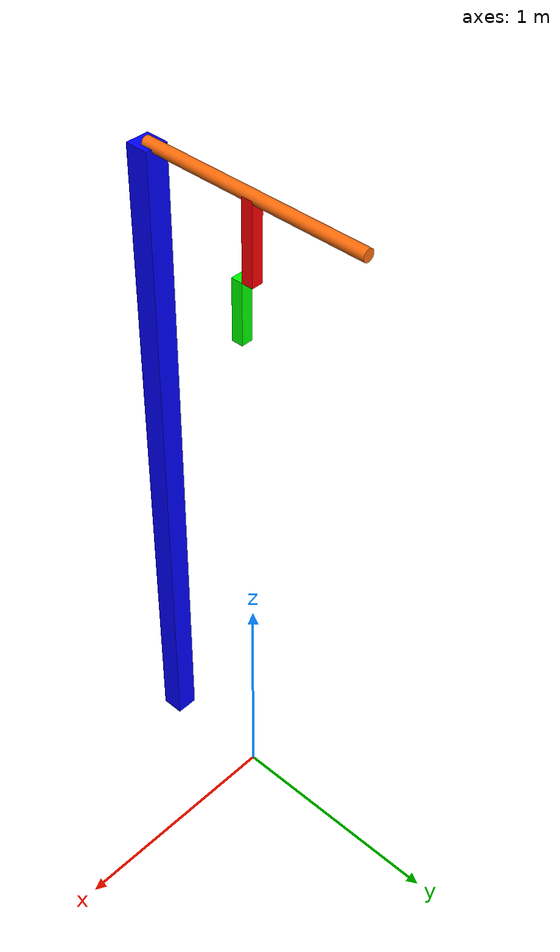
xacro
<?xml version="1.0"?>

<robot name="gymnast_robot" xmlns:xacro="http://ros.org/wiki/xacro">

    <xacro:include filename="$(find visualize_simulate)/xacro/common_params.xacro"/>
    <xacro:include filename="$(find visualize_simulate)/xacro/object_macro.xacro"/>

    <link name="world"/>

    <joint name="world_joint" type="fixed">
        <parent link="world"/>
        <child link="base_link"/>
        <origin xyz="0 -0.5 0" rpy="0 0 0"/>
    </joint>

    <link name="base_link">
        <visual>
            <geometry>
                <box size="0.1 0.1 3"/>
            </geometry>
            <origin xyz="0 0 1.5" rpy="0 0 0"/>
            <material name="Blue"/>
        </visual>
        <inertial>
            <origin xyz="0 0 1.5" rpy="0 0 0"/>
            <mass value="1"/>
            <inertia ixx="0.1" ixy="0" ixz="0" iyy="0.1" iyz="0" izz="0.1"/>
        </inertial>
        <collision>
            <geometry>
                <box size="0.1 0.1 3"/>
            </geometry>
            <origin xyz="0 0 1.5" rpy="0 0 0"/>
        </collision>
    </link>
    <gazebo reference="base_link">
        <material>Gazebo/Blue</material>
    </gazebo>

    <joint name="system_joint" type="fixed">
        <parent link="base_link"/>
        <child link="bar_link"/>
        <origin xyz="0 0.5 3" rpy="0 0 0"/>
    </joint>

    <link name="bar_link">
        <visual>
            <geometry>
                <cylinder radius="0.025" length="1.0"/>
            </geometry>
            <origin xyz="0 0 0" rpy="${PI/2} 0 0"/>
            <material name="Orange"/>
        </visual>
        <collision>
            <geometry>
                <cylinder radius="0.05" length="1.0"/>
            </geometry>
            <origin xyz="0 0 0" rpy="${PI/2} 0 0"/>
        </collision>
        <inertial>
            <mass value="1"/>
            <inertia
                ixx="0.1" ixy="0" ixz="0" iyy="0.1" iyz="0" izz="0.1"/>
            <origin xyz="0 0 0" rpy="${PI/2} 0 0"/>
        </inertial>
    </link>
    <gazebo reference="bar_link">
        <material>Gazebo/Orange</material>
    </gazebo>

    <xacro:link_macro
        suffix="1st" parent="bar" joint="continuous"
        x_offset="0" y_offset="0" z_offset="0"
        width="0.05" length="0.05" height="${0.323+0.015}"
        mass="0.710" com_x="0" com_y="0" com_z="0.232"
        ixx="0.01" ixy="0" ixz="0"
        iyy="0.01" iyz="0"
        izz="0.0058"
        color="Red"/>
    <xacro:link_macro
        suffix="2nd" parent="1st" joint="revolute"
        x_offset="0" y_offset="0.05" z_offset="${0.323+0.015}"
        width="0.05" length="0.05" height="0.265"
        mass="0.351" com_x="0" com_y="0" com_z="0.121"
        ixx="0.01" ixy="0" ixz="0"
        iyy="0.01" iyz="0"
        izz="0.070"
        color="Green"/>

    <gazebo>
        <plugin name="ft_sensor" filename="libgazebo_ros_ft_sensor.so">
            <updateRate>100.0</updateRate>
            <topicName>1st_sensor/raw</topicName>
            <jointName>1st_joint</jointName>
            <gaussianNoise>0.0</gaussianNoise>
        </plugin>
        <plugin name="ft_sensor" filename="libgazebo_ros_ft_sensor.so">
            <updateRate>100.0</updateRate>
            <topicName>2nd_sensor/raw</topicName>
            <jointName>2nd_joint</jointName>
            <gaussianNoise>0.0</gaussianNoise>
        </plugin>
        <plugin name="gazebo_ros_control" filename="libgazebo_ros_control.so">
            <robotNamespace>/gymnast_robot</robotNamespace>
            <robotSimType>gazebo_ros_control/DefaultRobotHWSim</robotSimType>
        </plugin>
    </gazebo>
</robot>

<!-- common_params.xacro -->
<robot xmlns:xacro="http://ros.org/wiki/xacro">

    <!--mathematical parameters-->
    <xacro:property name="PI" value="3.14"/>

    <!--color parameter-->
    <material name="Red">
        <color rgba="${255/255} ${0/255} ${0/255} ${255/255}"/>
    </material>
    <material name="Green">
        <color rgba="${0/255} ${255/255} ${0/255} ${255/255}"/>
    </material>
    <material name="Blue">
        <color rgba="${0/255} ${0/255} ${255/255} ${255/255}"/>
    </material>
    <material name="Orange">
        <color rgba="${255/255} ${108/255} ${10/255} ${255/255}"/>
    </material>

</robot>

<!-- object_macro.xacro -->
<robot xmlns:xacro="http://ros.org/wiki/xacro">

    <xacro:macro name="link_macro" params="suffix parent joint x_offset y_offset z_offset width length height mass com_x com_y com_z ixx ixy ixz iyy iyz izz color">
        <xacro:if value="${joint=='revolute'}">
            <joint name="${suffix}_joint" type="revolute">
                <parent link="${parent}_link"/>
                <child link="${suffix}_link"/>
                <origin xyz="${x_offset} ${y_offset} ${z_offset}" rpy="0 0 0"/>
                <limit lower="-${PI/2}" upper="${PI/2}" effort="1" velocity="100"/>
                <axis xyz="0 1 0"/>
                <dynamics damping="0.0"/>
            </joint>
            <transmission name="${suffix}_transmission">
                <type>transmission_interface/SimpleTransmission</type>
                <joint name="${suffix}_joint">
                    <hardwareInterface>hardware_interface/EffortJointInterface</hardwareInterface>
                </joint>
                    <actuator name="${suffix}_motor">
                        <hardwareInterface>EffortJointInterface</hardwareInterface>
                        <mechanismReduction>1</mechanismReduction>
                    </actuator>
                </transmission>
                <gazebo reference="${suffix}_joint">
                    <provideFeedback>true</provideFeedback>
                    <turnGravityOff>false</turnGravityOff>
                </gazebo>
        </xacro:if>

        <xacro:if value="${joint=='continuous'}">
            <joint name="${suffix}_joint" type="continuous">
                <parent link="${parent}_link"/>
                <child link="${suffix}_link"/>
                <origin xyz="${x_offset} ${y_offset} ${z_offset}" rpy="${PI} 0 0"/>
                <limit effort="0" velocity="100"/>
                <axis xyz="0 1 0"/>
                <dynamics damping="0.0"/>
            </joint>
            <gazebo reference="${suffix}_joint">
                <provideFeedback>true</provideFeedback>
                <turnGravityOff>false</turnGravityOff>
            </gazebo>
        </xacro:if>

        <link name="${suffix}_link">
            <visual>
                <geometry>
                    <box size="${width} ${length} ${height}"/>
                </geometry>
                <origin xyz="0 0 ${height/2}" rpy="0 0 0"/>
                <material name="${color}"/>
            </visual>

            <inertial>
                <origin xyz="${com_x} ${com_y} ${com_z}" rpy="0 0 0"/>
                <mass value="${mass}"/>
                <inertia
                    ixx="${ixx}" ixy="${ixy}" ixz="${ixz}"
                    iyy="${iyy}" iyz="${iyz}"
                    izz="${izz}"/>
            </inertial>

            <collision>
                <geometry>
                    <box size="${width} ${length} ${height}"/>
                </geometry>
                <origin xyz="0 0 ${height/2}" rpy="0 0 0"/>
            </collision>
        </link>
        <gazebo reference="${suffix}_link">
            <material>Gazebo/${color}</material>
            <selfCollide>true</selfCollide>
        </gazebo>

    </xacro:macro>
</robot>
